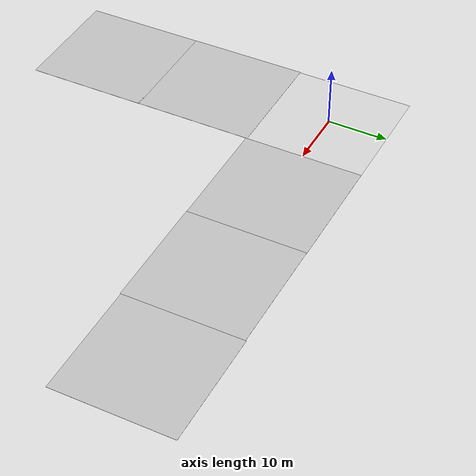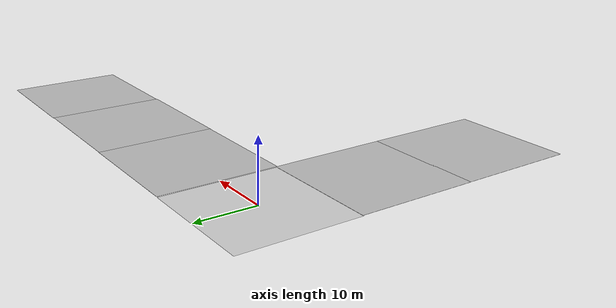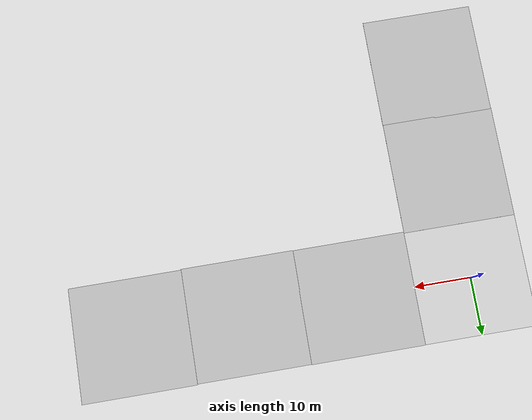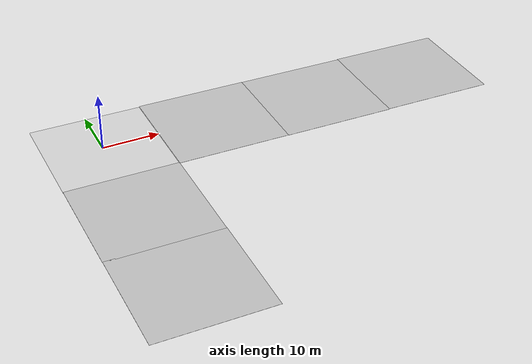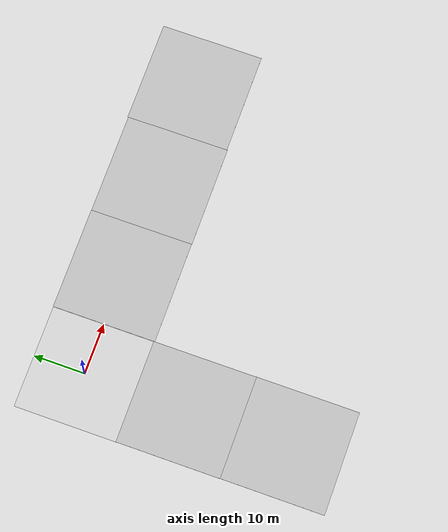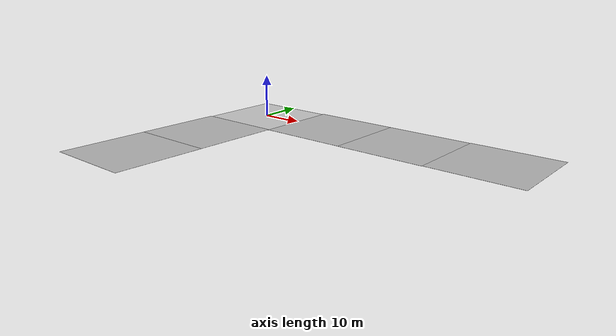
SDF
<sdf version="1.6">
 <world name="default">
  <light name="sun" type="directional">
   <pose>0 0 10 0 -0 0</pose>
   <diffuse>0.8 0.8 0.8 1</diffuse>
   <specular>0.1 0.1 0.1 1</specular>
   <attenuation>
    <range>1000</range>
    <constant>0.9</constant>
    <linear>0.01</linear>
    <quadratic>0.001</quadratic>
   </attenuation>
   <direction>-0.5 0.5 -1</direction>
  </light>
  <gravity>0 0 -9.8</gravity>
  <magnetic_field>6e-06 2.3e-05 -4.2e-05</magnetic_field>
  <atmosphere type="adiabatic"/>
  <physics name="default_physics" default="0" type="ode">
   <max_step_size>0.001</max_step_size>
   <real_time_factor>1</real_time_factor>
   <real_time_update_rate>1000</real_time_update_rate>
  </physics>
  <scene><ambient>0.4 0.4 0.4 1</ambient><background>0.7 0.7 0.7 1</background><shadows>1</shadows></scene>
  <spherical_coordinates>
   <surface_model>EARTH_WGS84</surface_model>
   <latitude_deg>0</latitude_deg>
   <longitude_deg>0</longitude_deg>
   <elevation>0</elevation>
   <heading_deg>0</heading_deg>
  </spherical_coordinates>
  <model name="my_ground_plane">
   <static>1</static>
   <link name="link">
    <collision name="collision">
     <geometry><plane><normal>0 0 1</normal><size>20 20</size></plane></geometry>
     <surface><friction><ode><mu>100</mu><mu2>50</mu2></ode></friction></surface>
    </collision>
    <visual name="visual">
     <cast_shadows>0</cast_shadows>
     <geometry><plane><normal>0 0 1</normal><size>20 20</size></plane></geometry>
     <material>
      <script>
       <uri>model://my_ground_plane/materials/scripts</uri>
       <uri>model://my_ground_plane/materials/textures/</uri>
       <name>MyGroundPlane/Image</name>
      </script>
     </material>
    </visual>
   </link>
   <pose>0.014768 0.007632 0 0 -0 0</pose>
  </model>
  <audio><device>default</device></audio>
  <model name="my_ground_plane_0">
   <static>1</static>
   <link name="link">
    <collision name="collision">
     <geometry><plane><normal>0 0 1</normal><size>20 20</size></plane></geometry>
     <surface><friction><ode><mu>100</mu><mu2>50</mu2></ode></friction></surface>
    </collision>
    <visual name="visual">
     <cast_shadows>0</cast_shadows>
     <geometry><plane><normal>0 0 1</normal><size>20 20</size></plane></geometry>
     <material>
      <script>
       <uri>model://my_ground_plane/materials/scripts</uri>
       <uri>model://my_ground_plane/materials/textures/</uri>
       <name>MyGroundPlane/Image</name>
      </script>
     </material>
    </visual>
   </link>
   <pose>0.028361 -19.7323 0 0 -0 0</pose>
  </model>
  <model name="my_ground_plane_1">
   <static>1</static>
   <link name="link">
    <collision name="collision">
     <geometry><plane><normal>0 0 1</normal><size>20 20</size></plane></geometry>
     <surface><friction><ode><mu>100</mu><mu2>50</mu2></ode></friction></surface>
    </collision>
    <visual name="visual">
     <cast_shadows>0</cast_shadows>
     <geometry><plane><normal>0 0 1</normal><size>20 20</size></plane></geometry>
     <material>
      <script>
       <uri>model://my_ground_plane/materials/scripts</uri>
       <uri>model://my_ground_plane/materials/textures/</uri>
       <name>MyGroundPlane/Image</name>
      </script>
     </material>
    </visual>
   </link>
   <pose>0.067058 -39.5426 0 0 -0 0</pose>
  </model>
  <model name="my_ground_plane_2">
   <static>1</static>
   <link name="link">
    <collision name="collision">
     <geometry><plane><normal>0 0 1</normal><size>20 20</size></plane></geometry>
     <surface><friction><ode><mu>100</mu><mu2>50</mu2></ode></friction></surface>
    </collision>
    <visual name="visual">
     <cast_shadows>0</cast_shadows>
     <geometry><plane><normal>0 0 1</normal><size>20 20</size></plane></geometry>
     <material>
      <script>
       <uri>model://my_ground_plane/materials/scripts</uri>
       <uri>model://my_ground_plane/materials/textures/</uri>
       <name>MyGroundPlane/Image</name>
      </script>
     </material>
    </visual>
   </link>
   <pose>20.0324 0.048055 0 0 -0 0</pose>
  </model>
  <model name="my_ground_plane_3">
   <static>1</static>
   <link name="link">
    <collision name="collision">
     <geometry><plane><normal>0 0 1</normal><size>20 20</size></plane></geometry>
     <surface><friction><ode><mu>100</mu><mu2>50</mu2></ode></friction></surface>
    </collision>
    <visual name="visual">
     <cast_shadows>0</cast_shadows>
     <geometry><plane><normal>0 0 1</normal><size>20 20</size></plane></geometry>
     <material>
      <script>
       <uri>model://my_ground_plane/materials/scripts</uri>
       <uri>model://my_ground_plane/materials/textures/</uri>
       <name>MyGroundPlane/Image</name>
      </script>
     </material>
    </visual>
   </link>
   <pose>39.9426 -0.006003 0 0 -0 0</pose>
  </model>
  <model name="my_ground_plane_4">
   <static>1</static>
   <link name="link">
    <collision name="collision">
     <geometry><plane><normal>0 0 1</normal><size>20 20</size></plane></geometry>
     <surface><friction><ode><mu>100</mu><mu2>50</mu2></ode></friction></surface>
    </collision>
    <visual name="visual">
     <cast_shadows>0</cast_shadows>
     <geometry><plane><normal>0 0 1</normal><size>20 20</size></plane></geometry>
     <material>
      <script>
       <uri>model://my_ground_plane/materials/scripts</uri>
       <uri>model://my_ground_plane/materials/textures/</uri>
       <name>MyGroundPlane/Image</name>
      </script>
     </material>
    </visual>
   </link>
   <pose>59.9113 0.12566 0 0 -0 0</pose>
  </model>
 </world>
</sdf>
